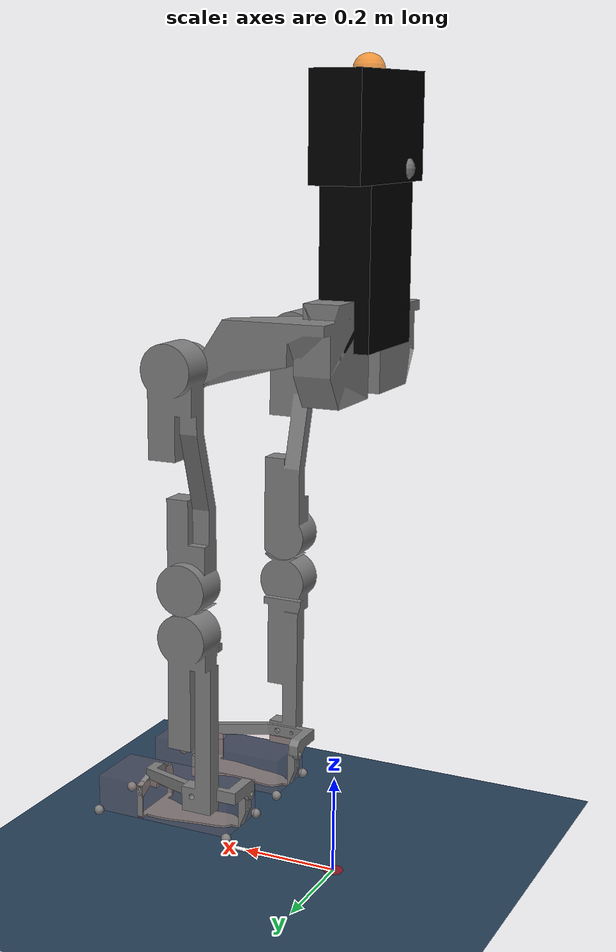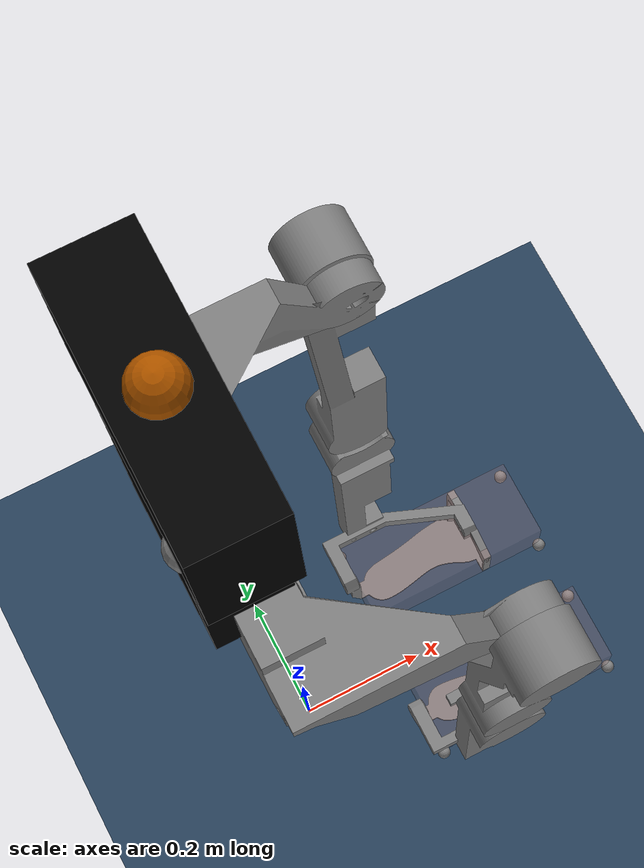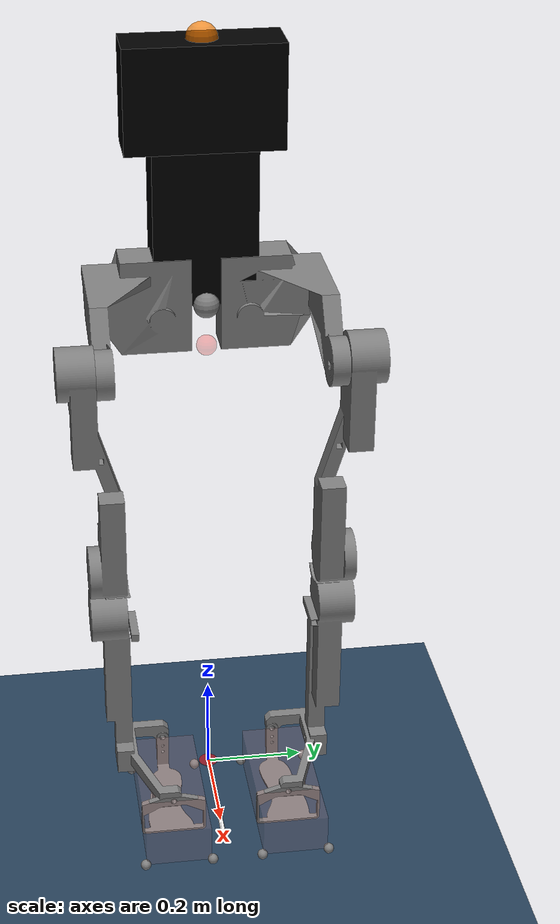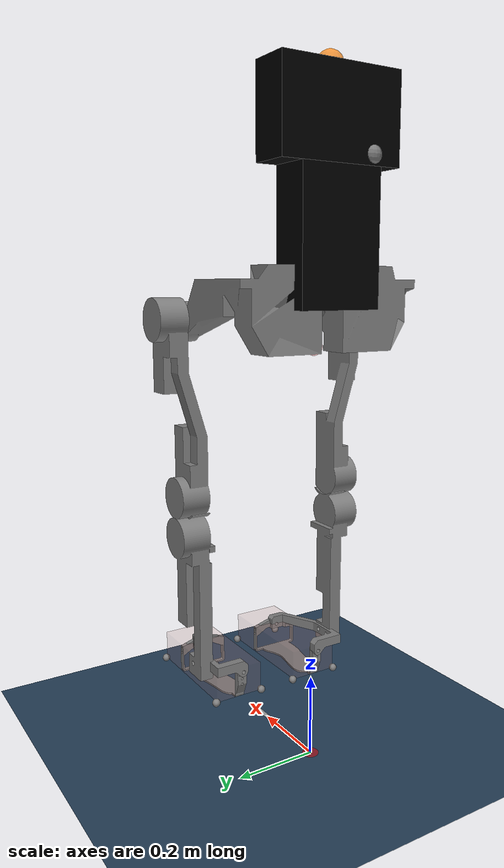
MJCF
<mujoco model="WE2 model">
    <compiler angle="radian" meshdir="STLS/STL/"/>
    <size njmax="2000" nconmax="2000"/>
    <option integrator="Euler" o_solref="0.0004 1" timestep="0.0002"/>
    <asset>
        <mesh name="BaseV2" file="BaseV2.stl"/>
        <mesh name="HipAA_RV2" file="HipAA_RV2.stl"/>
        <mesh name="HipFE_R" file="HipFE_R.stl"/>
        <mesh name="KneeFE_R" file="KneeFE_R.stl"/>
        <mesh name="AnkleFE_R" file="AnkleFE_R.stl"/>
        <mesh name="AnkleAA_R" file="AnkleAA_R.stl"/>
        <mesh name="HipAA_LV2" file="HipAA_LV2.stl"/>
        <mesh name="HipFE_L" file="HipFE_L.stl"/>
        <mesh name="KneeFE_L" file="KneeFE_L.stl"/>
        <mesh name="AnkleFE_L" file="AnkleFE_L.stl"/>
        <mesh name="AnkleAA_L" file="AnkleAA_L.stl"/>

        <texture builtin="gradient" height="512" rgb1=".3 .5 .7" rgb2="0 0 0" type="skybox"
                width="512"/>
        <texture builtin="flat" height="1278" mark="cross" markrgb="1 1 1" name="body"
                random="0.01"
                rgb1="0.8 0.6 0.4"
                rgb2="0.8 0.6 0.4"
                type="cube"
                width="127"/>
        <material name="body" rgba="0.8 0.6 .4 1" texture="body" texuniform="true"/>
        <texture builtin="checker" height="512" name="grid" rgb1=".1 .2 .3" rgb2=".2 .3 .4"
                type="2d"
                width="512"/>
        <material name="grid" reflectance="0.2" texrepeat="1 1" texture="grid" texuniform="true"/>
    </asset>
    <visual>
       	<map force=".1" zfar="30"/>
       	<rgba haze=".15 .25 .35 1"/>
       	<quality shadowsize="4096"/>
       	<global offheight="800" offwidth="800"/>
    </visual>

		<worldbody>
        <geom condim="3" material="grid" name="floor" size="0 0 0.05" type="plane"/>
		<site type="cylinder" name="CoMProjection" size="0.02 0.001" pos="0 0 0.001" rgba="1 0 0 0.5"/>
		<site type="cylinder" name="XCoM" size="0.02 0.001" pos="0 0 0.001" rgba="0 1 0 0.5"/>
		<site type="sphere" name="WholeBodyCoM" size="0.02" pos="0 0 1" rgba="1 0 0 0.25"/>
		<site type="sphere" name="bos_v1" size="0.005" pos = "0.01 0 0" rgba="1 1 1 1"/>
		<site type="sphere" name="bos_v2" size="0.005" pos = "0.05 0 0" rgba="1 1 1 1"/>
		<site type="sphere" name="bos_v3" size="0.005" pos = "0.1 0 0" rgba="1 1 1 1"/>
		<site type="sphere" name="bos_v4" size="0.005" pos = "0.15 0 0" rgba="1 1 1 1"/>
		<site type="sphere" name="bos_v5" size="0.005" pos = "0.2 0 0" rgba="1 1 1 1"/>
		<site type="sphere" name="bos_v6" size="0.005" pos = "0.25 0 0" rgba="1 1 1 1"/>
		<site type="cylinder" name="CoP" size="0.02 0.001" pos="0 0 0.001" rgba="1 1 0 0.5"/>

        <light cutoff="100" diffuse="1 1 1" mode="targetbodycom" name="spotlight" pos="0 -20 4" specular=".3 .3 .3" target="BasePlate"/>
		<light mode="fixed" cutoff="900" name="overheadlight" pos="0 0 2" dir="0 0 -1"/>
        <body name="BasePlate" pos="0 0 1.083530">
            <inertial pos="-0.057270602602744 0.005299758341922 0.366042803452782" mass="13.490792212350001" fullinertia="0.482126443023855 0.463112450324283 0.050442354591529 0.002117098189414 0.029063024621876 -0.002811812789257"/>
            <joint name="BaseV2" type="free"/>
            <!--geom type="mesh" contype="0" conaffinity="0" group="1" mesh="BaseV2" rgba="0.5 0.5 0.5 0.2"/-->
            <geom type="box" pos="-0.05 0 0.15" size="0.05 0.1 0.15" rgba="0 0 0 1"/>
            <geom type="box" pos="-0.05 0 0.4" size="0.05 0.15 0.1" rgba="0 0 0 1"/>
            <site name="IMU" pos="-0.084 -0.0825 0.324" size="0.025" type="sphere" quat="0.707106781186547 0 0 0.707106781186547"/>
            <site name="BaseOrigin" pos="0 0 0" size="0.025" type="sphere"/>
            <site name="bws_attach" pos="-0.05 0 0.5" size="0.03" type="sphere" rgba="1 0.5 0 0.7"/>
            <body name="PelvicAA_R" pos="-0.0345 -0.084 -0.02474" quat="0.500000000000000	0.500000000000000	-0.500000000000000	-0.500000000000000">
                <inertial pos="0.082578042235349 0.013653397526189 -0.075427644047225" mass="4.353797858320000" fullinertia="0.055239258077622 0.073621847803363 0.028193437582548 0.000079559319856 0.027398457287840 -0.001994403011759"/>
                <joint name="HipAA_RV2" pos="0 0 0" axis="0 0 1" limited = "true" range="-0.36 0.36"/>
                <geom type="mesh" mesh="HipAA_RV2"/>
                <body name="UpperLeg_R" pos="0.146 0 -0.24279" quat="0.500059520256777 -0.499940472657058 0.500059520256777 -0.499940472657058">
                    <inertial pos="0.199846820721562 0.008207906110950 -0.004980116110000" mass="5.18" fullinertia="0.015043823264001 0.118915013737402 0.115425676851460 0.001031089234110 0.012312304052643 0.003063347551360"/>
                    <joint name="HipFE_R" pos="0 0 0" axis="0 0 1" limited = "true" range="-0.38 2.44"/>
                    <geom type="mesh" mesh="HipFE_R"/>
                    <body name="LowerLeg_R" pos="0.420000011900000 -0.000000000000000 -0.045500000000000" quat="0.000000000000000 0.999993729267104 0.003541387647616 0.000000000000000">
                        <inertial pos="0.111514455701414 -0.008556712886134 -0.012080773420000" mass="3.498" fullinertia="0.007914033624747 0.039403277723012 0.038456303630052 -0.001728523931762 -0.002131135585257 0.001727422853298"/>
                        <joint name="KneeFE_R" pos="0 0 0" axis="0 0 1" limited = "true" range="-0.05 1.93"/>
                        <geom type="mesh" mesh="KneeFE_R"/>
                        <body name="AnkleFlex_R" pos="0.433011603600000 0.000000000000000 0.070750000000000" quat="0.999993300587283 0.000000000000000 0.000000000000000 0.003660434475724">
                            <inertial pos="0.002483559140000 -0.020646780180000 -0.038712229890000" mass="0.19830015239" fullinertia="0.001353384265765 0.000147154618255 0.001236467745393 0.000029553983040 -0.000010610138206 0.000109102047877"/>
                            <joint name="AnkleFE_R" pos="0 0 0" axis="0 0 1" limited = "true" range="-0.61 0.74"/>
                            <geom type="mesh" mesh="AnkleFE_R"/>
                            <body name="AnkleAbd_R" pos="0.015790000000000 0.058340000000000 -0.000000000000000" quat="0.707106781186548 0.707106781186547 0.000000000000000 0.000000000000000">
                                <inertial mass="0.546900188050000" pos="0.048949206190000 -0.001325474600000 0.123662348280000" fullinertia="0.004727464155967 0.004787867405933 0.000977517979606 0.000016178488021 -0.000023193833752 0.000007681237387"/>
                                <joint name="AnkleAA_R" pos="0 0 0" axis="0 0 1" limited = "true" range="-0.2618 0.2618"/>
                                <geom type="mesh" group="1" mesh="AnkleAA_R" contype="2" conaffinity="2"/>
                                <geom type="box" name="footsole_R" pos="0.0375 0 0.1475" size="0.0375 0.0625 0.1475" rgba="0.75 0.5 0.5 0.1"/>
                                <body name="RHI_Body" pos="0.075 0.0652 0">
									<geom type="sphere" name="RHI_Geom" pos="0 0 0" size="0.00001" rgba="0.75 0.5 0.5 0.1" mass="0.00001"/>
									<site name="RHI_Site" pos="0 0 0" size="0.00001"/>
								</body>
								<body name="RTI_Body" pos="0.075 0.0652 0.295">
									<geom type="sphere" name="RTI_Geom" pos="0 0 0" size="0.00001" rgba="0.75 0.5 0.5 0.1" mass="0.00001"/>
									<site name="RTI_Site" pos="0 0 0" size="0.00001"/>
								</body>
								<body name="RHO_Body" pos="0.075 -0.0652 0">
									<geom type="sphere" name="RHO_Geom" pos="0 0 0" size="0.00001" rgba="0.75 0.5 0.5 0.1" mass="0.00001"/>
									<site name="RHO_Site" pos="0 0 0" size="0.00001"/>
								</body>
								<body name="RTO_Body" pos="0.075 -0.0652 0.295">
									<geom type="sphere" name="RTO_Geom" pos="0 0 0" size="0.00001" rgba="0.75 0.5 0.5 0.1" mass="0.00001"/>
									<site name="RTO_Site" pos="0 0 0" size="0.00001"/>
								</body>

								<site name="rightHeel_in" pos="0.075 0.0652 0" size="0.01" type="sphere"/>
                                <site name="rightToe_in" pos="0.075 0.0652 0.295" size="0.01" type="sphere"/>
                                <site name="rightHeel_out" pos="0.075 -0.0652 0" size="0.01" type="sphere"/>
                                <site name="rightToe_out" pos="0.075 -0.0652 0.295" size="0.01" type="sphere"/>
                            </body>
                        </body>
                    </body>
                </body>
            </body>
            <body name="PelvicAA_L" pos="-0.034500000000000 0.084000000000000 -0.024740000000000" quat="0.500000000000000 0.500000000000000 0.500000000000000 0.500000000000000">
                <inertial mass="4.353797858320000" pos="0.082578042235349 0.013653397526189 0.075427644047225" fullinertia="0.055239258077622 0.073621847803363 0.028193437582548 0.000079559319856 -0.027398457287840 0.001994403011759"/>
                <joint name="HipAA_LV2" pos="0 0 0" axis="0 0 1" limited = "true" range="-0.36 0.36"/>
                <geom type="mesh" mesh="HipAA_LV2"/>
                <body name="UpperLeg_L" pos="0.146000000000000 -0.000000000000000 0.242790000000000" quat="0.500059520256777 0.499940472657058 -0.500059520256777 -0.499940472657058">
                    <inertial mass="5.180000000000000" pos="0.199846820721562 0.008207906110950 0.004980116110000" fullinertia="0.015043823264001 0.118915013737402 0.115425676851460 0.001031089234110 -0.012312304052643 -0.003063347551360"/>
                    <joint name="HipFE_L" pos="0 0 0" axis="0 0 1" limited = "true" range="-0.38 2.44"/>
                    <geom type="mesh" mesh="HipFE_L"/>
                    <body name="LowerLeg_L" pos="0.420000011900000 0.000000000000000 0.045500000000000" quat="0.000000000000000 0.999993729267104 0.003541387647616 0.000000000000000">
                        <inertial mass="3.498000000000000" pos="0.111514455701414 -0.008556712886134 0.012080773420000" fullinertia="0.007914033624747 0.039403277723012 0.038456303630052 -0.001728523931762 0.002131135585257 -0.001727422853298"/>
                        <joint name="KneeFE_L" pos="0 0 0" axis="0 0 1" limited = "true" range="-0.05 1.93"/>
                        <geom type="mesh" mesh="KneeFE_L"/>
                        <body name="AnkleFlex_L" pos="0.433011603600000 0.000000000000000 -0.070750000000000" quat="0.999993300587283 0.000000000000000 0.000000000000000 0.003660434475724">
                            <inertial mass="0.198300152390000" pos="0.002483559140000 -0.020646780180000 0.038712229890000" fullinertia="0.001353384265765 0.000147154618255 0.001236467745393 0.000029553983040 0.000010610138206 -0.000109102047877"/>
                            <joint name="AnkleFE_L" pos="0 0 0" axis="0 0 1" limited = "true" range="-0.61 0.74"/>
                            <geom type="mesh" mesh="AnkleFE_L"/>
                            <body name="AnkleAbd_L" pos="0.015790000000000 0.058340000000000 0.000000000000000" quat="0.707106781186548 -0.707106781186547 0.000000000000000 0.000000000000000">
                                <inertial mass="0.546900188050000" pos="0.048949206190000 -0.001325474600000 -0.123662348280000" fullinertia="0.004727464155967 0.004787867405933 0.000977517979606 0.000016178488021 0.000023193833752 -0.000007681237387"/>
                                <joint name="AnkleAA_L" pos="0 0 0" axis="0 0 1" limited = "true" range="-0.2618 0.2618"/>
                                <geom type="mesh" group="1" mesh="AnkleAA_L" contype="2" conaffinity="2"/>
                                <geom type="box" name="footsole_L" pos="0.0375 0 -0.1475" size="0.0375 0.0625 0.1475" rgba="0.75 0.5 0.5 0.1"/>
                                <body name="LHI_Body" pos="0.075 0.0652 0">
									<geom type="sphere" name="LHI_Geom" pos="0 0 0" size="0.001" rgba="0.75 0.5 0.5 0.1" mass="0.00001"/>
									<site name="LHI_Site" pos="0 0 0" size="0.001"/>
								</body>
								<body name="LTI_Body" pos="0.075 0.0652 -0.295">
									<geom type="sphere" name="LTI_Geom" pos="0 0 0" size="0.00001" rgba="0.75 0.5 0.5 0.1" mass="0.00001"/>
									<site name="LTI_Site" pos="0 0 0" size="0.00001"/>
								</body>
								<body name="LHO_Body" pos="0.075 -0.0652 0">
									<geom type="sphere" name="LHO_Geom" pos="0 0 0" size="0.00001" rgba="0.75 0.5 0.5 0.1" mass="0.00001"/>
									<site name="LHO_Site" pos="0 0 0" size="0.00001"/>
								</body>
								<body name="LTO_Body" pos="0.075 -0.0652 -0.295">
									<geom type="sphere" name="LTO_Geom" pos="0 0 0" size="0.00001" rgba="0.75 0.5 0.5 0.1" mass="0.00001"/>
									<site name="LTO_Site" pos="0 0 0" size="0.00001"/>
								</body>
                                <site name="leftHeel_in" pos="0.075 0.0652 0" size="0.01" type="sphere"/>
                                <site name="leftToe_in" pos="0.075 0.0652 -0.295" size="0.01" type="sphere"/>
                                <site name="leftHeel_out" pos="0.075 -0.0652 0" size="0.01" type="sphere"/>
                                <site name="leftToe_out" pos="0.075 -0.0652 -0.295" size="0.01" type="sphere"/>
                            </body>
                        </body>
                    </body>
                </body>
            </body>
        </body>
    </worldbody>
	<tendon>
	<spatial width="0.005" rgba="1 1 1 1" limited="true" range="0 0.33">
		<site site="bos_v1"/>
		<site site="bos_v2"/>
		<site site="bos_v3"/>
		<site site="bos_v4"/>
		<site site="bos_v5"/>
		<site site="bos_v6"/>
		<site site="bos_v1"/>
	</spatial>
	</tendon>
    <actuator>
        <motor joint="HipAA_LV2" name="LHA" ctrlrange="-40 40" forcerange="-40 40" ctrllimited="true" forcelimited="true"/>
        <motor joint="HipFE_L"   name="LHF" ctrlrange="-60 60" forcerange="-60 60" ctrllimited="true" forcelimited="true"/>
        <motor joint="KneeFE_L"  name="LK"  ctrlrange="-50 50" forcerange="-50 50" ctrllimited="true" forcelimited="true"/>
        <motor joint="AnkleFE_L" name="LA"  ctrlrange="-30 30" forcerange="-30 30" ctrllimited="true" forcelimited="true"/>
        <motor joint="HipAA_RV2" name="RHA" ctrlrange="-40 40" forcerange="-40 40" ctrllimited="true" forcelimited="true"/>
        <motor joint="HipFE_R"   name="RHF" ctrlrange="-60 60" forcerange="-60 60" ctrllimited="true" forcelimited="true"/>
        <motor joint="KneeFE_R"  name="RK"  ctrlrange="-50 50" forcerange="-50 50" ctrllimited="true" forcelimited="true"/>
        <motor joint="AnkleFE_R" name="RA"  ctrlrange="-30 30" forcerange="-30 30" ctrllimited="true" forcelimited="true"/>
    </actuator>
    <sensor>
        <framequat name="Base_quat" objname="BaseOrigin" objtype="site"/>
        <framepos name="Base_pos" objname="BaseOrigin" objtype="site"/>
        <jointpos joint="HipAA_LV2" name="LHA_rad"/>
        <jointpos joint="HipFE_L" name="LHF_rad"/>
        <jointpos joint="KneeFE_L" name="LKF_rad"/>
        <jointpos joint="AnkleFE_L" name="LAF_rad"/>
        <jointpos joint="AnkleAA_L" name="LAA_rad"/>
        <jointpos joint="HipAA_RV2" name="RHA_rad"/>
        <jointpos joint="HipFE_R" name="RHF_rad"/>
        <jointpos joint="KneeFE_R" name="RKF_rad"/>
        <jointpos joint="AnkleFE_R" name="RAF_rad"/>
        <jointpos joint="AnkleAA_R" name="RAA_rad"/>
        <gyro name="Base_avel" site="BaseOrigin"/>
        <velocimeter name="Base_lvel" site="BaseOrigin"/>
        <jointvel joint="HipAA_LV2" name="LHA_rad_s"/>
        <jointvel joint="HipFE_L" name="LHF_rad_s"/>
        <jointvel joint="KneeFE_L" name="LKF_rad_s"/>
        <jointvel joint="AnkleFE_L" name="LAF_rad_s"/>
        <jointvel joint="AnkleAA_L" name="LAA_rad_s"/>
        <jointvel joint="HipAA_RV2" name="RHA_rad_s"/>
        <jointvel joint="HipFE_R" name="RHF_rad_s"/>
        <jointvel joint="KneeFE_R" name="RKF_rad_s"/>
        <jointvel joint="AnkleFE_R" name="RAF_rad_s"/>
        <jointvel joint="AnkleAA_R" name="RAA_rad_s"/>
        <force name="LHI" site="LHI_Site"/>
        <force name="LTI" site="LTI_Site"/>
        <force name="LHO" site="LHO_Site"/>
        <force name="LTO" site="LTO_Site"/>
        <force name="RHI" site="RHI_Site"/>
        <force name="RTI" site="RTI_Site"/>
        <force name="RHO" site="RHO_Site"/>
        <force name="RTO" site="RTO_Site"/>
        <accelerometer name="IMU_acc" site="IMU"/>
        <!-- No clear explanation why this sensor gives such a noisy reading while no noise levels have been specified   -->
        <gyro name="IMU_gyr" site="IMU"/>
        <framequat name="IMU_quat" objname="IMU" objtype="site"/>
    </sensor>
    <contact>
        <pair geom1="floor" geom2="footsole_L"/>
        <pair geom1="floor" geom2="footsole_R"/>
    </contact>
    <keyframe>
        <key name="standing" qpos="0 0 1.083530 1 0 0 0 0 0 0 0 0 0 0 0 0 0"/>
    </keyframe>
</mujoco>
